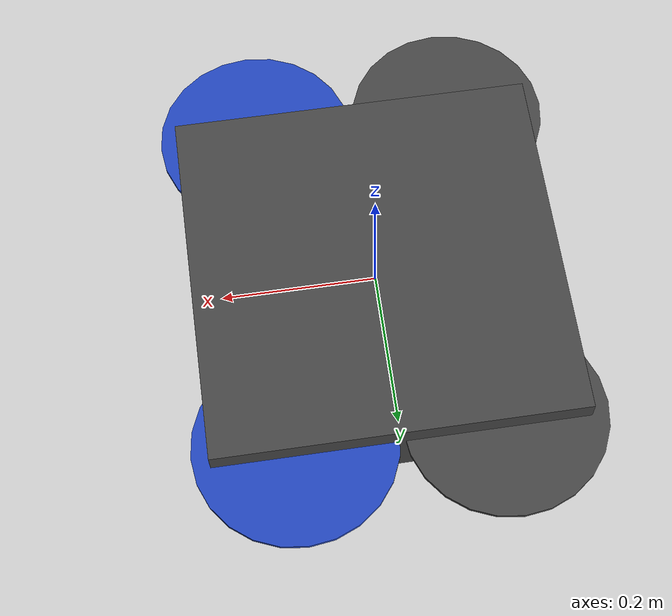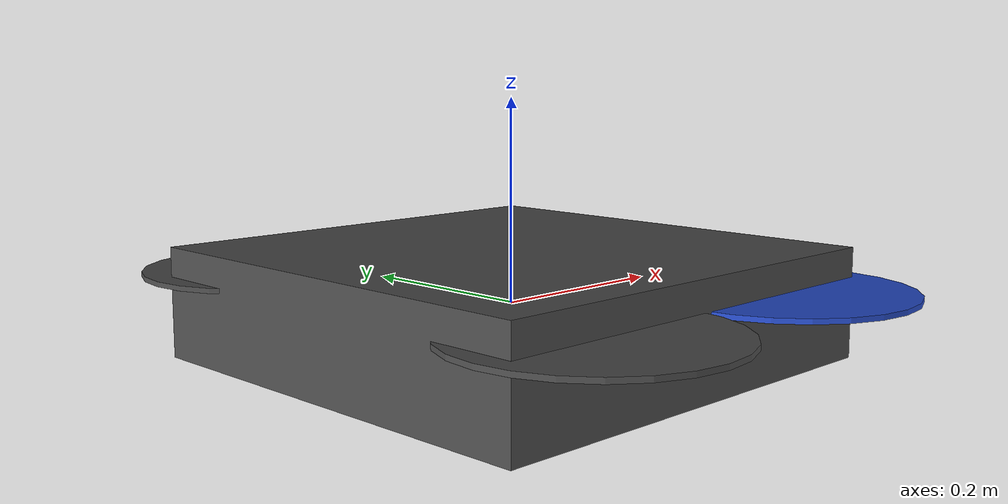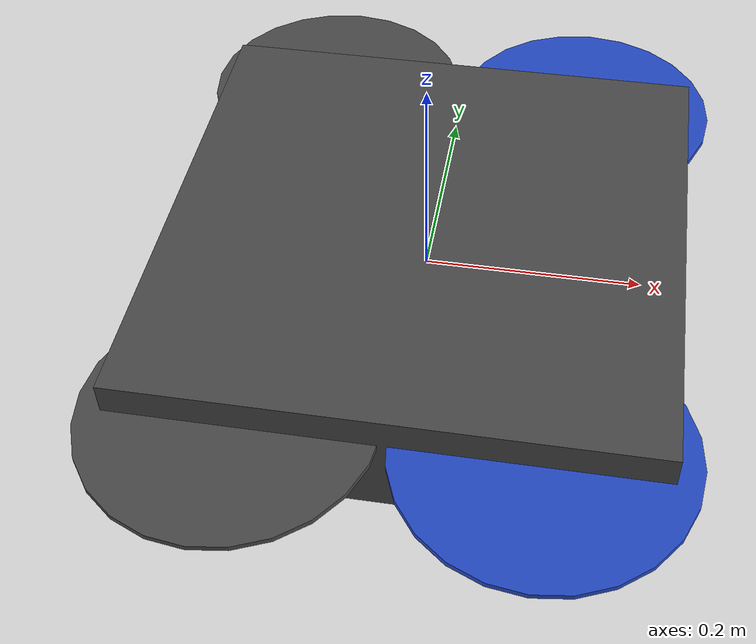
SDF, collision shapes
<?xml version='1.0'?>
<sdf version='1.6'>
  <model name='iris'>
    <link name='base_link'>
      <pose>0 0 0 0 -0 0</pose>
      <inertial>
        <pose>0 0 0 0 -0 0</pose>
        <mass>1.5</mass>
        <inertia>
          <ixx>0.0347563</ixx>
          <ixy>0</ixy>
          <ixz>0</ixz>
          <iyy>0.0458929</iyy>
          <iyz>0</iyz>
          <izz>0.0977</izz>
        </inertia>
      </inertial>
      <collision name='base_link_inertia_collision'>
        <pose>0 0 0 0 -0 0</pose>
        <geometry>
          <box>
            <size>0.47 0.47 0.11</size>
          </box>
        </geometry>
        <surface>
          <contact>
            <ode>
              <min_depth>0.001</min_depth>
              <max_vel>0</max_vel>
            </ode>
          </contact>
          <friction>
            <ode/>
          </friction>
        </surface>
      </collision>
      <visual name='base_link_inertia_visual'>
        <pose>0 0 0 0 -0 0</pose>
        <geometry>
          <mesh>
            <scale>1 1 1</scale>
            <uri>model://iris/meshes/iris.stl</uri>
          </mesh>
        </geometry>
        <material>
          <script>
            <name>Gazebo/DarkGrey</name>
            <uri>file://media/materials/scripts/gazebo.material</uri>
          </script>
        </material>
      </visual>

      <sensor name='gps' type='gps'>
        <pose>0 0 0 0 -0 0</pose>
        <update_rate>10</update_rate>
        <plugin name='gps_plugin' filename='libgazebo_gps_plugin.so'>
          <robotNamespace/>
        </plugin>
      </sensor>

      <sensor name='imu_sensor' type='imu'>
        <pose>0 0 0 3.141593 0 0</pose>
        <always_on>1</always_on>
        <update_rate>100</update_rate>
        <visualize>0</visualize>
        <plugin name='imu_plugin' filename='libgazebo_imu_plugin.so'>
          <robotNamespace/>
          <bodyName>base_link</bodyName>
          <topicName>imu</topicName>
          <serviceName>imu_service</serviceName>
          <gaussianNoise>0.0</gaussianNoise>
          <updateRateHZ>100.0</updateRateHZ>
        </plugin>
      </sensor>

      <sensor name='fpv_camera' type='camera'>
        <pose>0.1 0 0.05 0 0 0</pose> <camera name='head'>
          <horizontal_fov>1.39626</horizontal_fov> <image>
            <width>640</width>
            <height>480</height>
            <format>R8G8B8</format>
          </image>
          <clip>
            <near>0.02</near>
            <far>300</far>
          </clip>
          <noise>
            <type>gaussian</type>
            <mean>0.0</mean>
            <stddev>0.007</stddev>
          </noise>
        </camera>
        <always_on>1</always_on>
        <update_rate>30</update_rate> <visualize>true</visualize> <plugin name='camera_controller' filename='libgazebo_ros_camera.so'>
          <ros>
            <namespace>/fpv_camera</namespace> </ros>
          <camera_name>iris_fpv</camera_name>
          <frame_name>fpv_camera_link_optical</frame_name> </plugin>
      </sensor>
      </link> <link name='/rotor_0'>
      <pose>0.13 -0.22 0.023 0 -0 0</pose>
      <inertial>
        <pose>0 0 0 0 -0 0</pose>
        <mass>0.005</mass>
        <inertia>
          <ixx>9.75e-07</ixx> <ixy>0</ixy> <ixz>0</ixz>
          <iyy>0.000273104</iyy> <iyz>0</iyz>
          <izz>0.000274004</izz>
        </inertia>
      </inertial>
      <collision name='/rotor_0_collision'>
        <pose>0 0 0 0 -0 0</pose>
        <geometry>
          <cylinder>
            <length>0.005</length>
            <radius>0.128</radius>
          </cylinder>
        </geometry>
        <surface>
          <contact> <ode/> </contact>
          <friction> <ode/> </friction>
        </surface>
      </collision>
      <visual name='/rotor_0_visual'>
        <pose>0 0 0 0 -0 0</pose>
        <geometry>
          <mesh>
            <scale>1 1 1</scale>
            <uri>model://iris/meshes/iris_prop_ccw.stl</uri>
          </mesh>
        </geometry>
        <material>
          <script>
            <name>Gazebo/Blue</name>
            <uri>file://media/materials/scripts/gazebo.material</uri>
          </script>
        </material>
      </visual>
    </link>
    <joint name='/rotor_0_joint' type='revolute'>
      <pose>0 0 0 0 -0 0</pose>
      <parent>base_link</parent>
      <child>/rotor_0</child>
      <axis>
        <xyz>0 0 1</xyz> <limit>
          <lower>-1e+16</lower> <upper>1e+16</upper>
        </limit>
        <dynamics>
          <damping>0.005</damping>
        </dynamics>
        <use_parent_model_frame>1</use_parent_model_frame>
      </axis>
      <physics> <ode> <implicit_spring_damper>1</implicit_spring_damper> </ode> </physics>
    </joint>

    <link name='/rotor_1'>
      <pose>-0.13 0.22 0.023 0 -0 0</pose>
       <inertial> <mass>0.005</mass> <inertia> <ixx>9.75e-07</ixx> <iyy>0.000273104</iyy> <izz>0.000274004</izz> </inertia> </inertial>
       <collision name='/rotor_1_collision'> <geometry> <cylinder> <length>0.005</length> <radius>0.128</radius> </cylinder> </geometry> <surface> <contact><ode/></contact> <friction><ode/></friction> </surface> </collision>
       <visual name='/rotor_1_visual'> <geometry> <mesh> <scale>1 1 1</scale> <uri>model://iris/meshes/iris_prop_ccw.stl</uri> </mesh> </geometry> <material> <script> <name>Gazebo/DarkGrey</name> <uri>file://media/materials/scripts/gazebo.material</uri> </script> </material> </visual>
    </link>
    <joint name='/rotor_1_joint' type='revolute'> <parent>base_link</parent> <child>/rotor_1</child> <axis> <xyz>0 0 1</xyz> <limit> <lower>-1e+16</lower> <upper>1e+16</upper> </limit> <dynamics> <damping>0.005</damping> </dynamics> <use_parent_model_frame>1</use_parent_model_frame> </axis> <physics> <ode> <implicit_spring_damper>1</implicit_spring_damper> </ode> </physics> </joint>

    <link name='/rotor_2'>
      <pose>0.13 0.22 0.023 0 -0 0</pose>
      <inertial> <mass>0.005</mass> <inertia> <ixx>9.75e-07</ixx> <iyy>0.000273104</iyy> <izz>0.000274004</izz> </inertia> </inertial>
      <collision name='/rotor_2_collision'> <geometry> <cylinder> <length>0.005</length> <radius>0.128</radius> </cylinder> </geometry> <surface> <contact><ode/></contact> <friction><ode/></friction> </surface> </collision>
      <visual name='/rotor_2_visual'> <geometry> <mesh> <scale>1 1 1</scale> <uri>model://iris/meshes/iris_prop_cw.stl</uri> </mesh> </geometry> <material> <script> <name>Gazebo/Blue</name> <uri>file://media/materials/scripts/gazebo.material</uri> </script> </material> </visual>
    </link>
    <joint name='/rotor_2_joint' type='revolute'> <parent>base_link</parent> <child>/rotor_2</child> <axis> <xyz>0 0 1</xyz> <limit> <lower>-1e+16</lower> <upper>1e+16</upper> </limit> <dynamics> <damping>0.005</damping> </dynamics> <use_parent_model_frame>1</use_parent_model_frame> </axis> <physics> <ode> <implicit_spring_damper>1</implicit_spring_damper> </ode> </physics> </joint>

    <link name='/rotor_3'>
      <pose>-0.13 -0.22 0.023 0 -0 0</pose>
      <inertial> <mass>0.005</mass> <inertia> <ixx>9.75e-07</ixx> <iyy>0.000273104</iyy> <izz>0.000274004</izz> </inertia> </inertial>
      <collision name='/rotor_3_collision'> <geometry> <cylinder> <length>0.005</length> <radius>0.128</radius> </cylinder> </geometry> <surface> <contact><ode/></contact> <friction><ode/></friction> </surface> </collision>
      <visual name='/rotor_3_visual'> <geometry> <mesh> <scale>1 1 1</scale> <uri>model://iris/meshes/iris_prop_cw.stl</uri> </mesh> </geometry> <material> <script> <name>Gazebo/DarkGrey</name> <uri>file://media/materials/scripts/gazebo.material</uri> </script> </material> </visual>
    </link>
    <joint name='/rotor_3_joint' type='revolute'> <parent>base_link</parent> <child>/rotor_3</child> <axis> <xyz>0 0 1</xyz> <limit> <lower>-1e+16</lower> <upper>1e+16</upper> </limit> <dynamics> <damping>0.005</damping> </dynamics> <use_parent_model_frame>1</use_parent_model_frame> </axis> <physics> <ode> <implicit_spring_damper>1</implicit_spring_damper> </ode> </physics> </joint>

    <plugin name='rotor_driver_0' filename='libgazebo_motor_model.so'>
      <robotNamespace/> <jointName>/rotor_0_joint</jointName> <linkName>/rotor_0</linkName> <turningDirection>ccw</turningDirection> <timeConstant>0.0125</timeConstant> <maxRotVelocity>838</maxRotVelocity> <motorConstant>8.54858e-06</motorConstant> <momentConstant>0.016</momentConstant> <commandSubTopic>/gazebo/command/motor_speed</commandSubTopic> <motorNumber>0</motorNumber> <rotorDragCoefficient>0.000106428</rotorDragCoefficient> <rollingMomentCoefficient>1e-06</rollingMomentCoefficient> <motorSpeedPubTopic>/motor_speed/0</motorSpeedPubTopic> <rotorVelocitySlowdownSim>10</rotorVelocitySlowdownSim>
    </plugin>
    <plugin name='rotor_driver_1' filename='libgazebo_motor_model.so'>
      <robotNamespace/> <jointName>/rotor_1_joint</jointName> <linkName>/rotor_1</linkName> <turningDirection>ccw</turningDirection> <timeConstant>0.0125</timeConstant> <maxRotVelocity>838</maxRotVelocity> <motorConstant>8.54858e-06</motorConstant> <momentConstant>0.016</momentConstant> <commandSubTopic>/gazebo/command/motor_speed</commandSubTopic> <motorNumber>1</motorNumber> <rotorDragCoefficient>0.000106428</rotorDragCoefficient> <rollingMomentCoefficient>1e-06</rollingMomentCoefficient> <motorSpeedPubTopic>/motor_speed/1</motorSpeedPubTopic> <rotorVelocitySlowdownSim>10</rotorVelocitySlowdownSim>
    </plugin>
    <plugin name='rotor_driver_2' filename='libgazebo_motor_model.so'>
      <robotNamespace/> <jointName>/rotor_2_joint</jointName> <linkName>/rotor_2</linkName> <turningDirection>cw</turningDirection> <timeConstant>0.0125</timeConstant> <maxRotVelocity>838</maxRotVelocity> <motorConstant>8.54858e-06</motorConstant> <momentConstant>0.016</momentConstant> <commandSubTopic>/gazebo/command/motor_speed</commandSubTopic> <motorNumber>2</motorNumber> <rotorDragCoefficient>0.000106428</rotorDragCoefficient> <rollingMomentCoefficient>1e-06</rollingMomentCoefficient> <motorSpeedPubTopic>/motor_speed/2</motorSpeedPubTopic> <rotorVelocitySlowdownSim>10</rotorVelocitySlowdownSim>
    </plugin>
    <plugin name='rotor_driver_3' filename='libgazebo_motor_model.so'>
      <robotNamespace/> <jointName>/rotor_3_joint</jointName> <linkName>/rotor_3</linkName> <turningDirection>cw</turningDirection> <timeConstant>0.0125</timeConstant> <maxRotVelocity>838</maxRotVelocity> <motorConstant>8.54858e-06</motorConstant> <momentConstant>0.016</momentConstant> <commandSubTopic>/gazebo/command/motor_speed</commandSubTopic> <motorNumber>3</motorNumber> <rotorDragCoefficient>0.000106428</rotorDragCoefficient> <rollingMomentCoefficient>1e-06</rollingMomentCoefficient> <motorSpeedPubTopic>/motor_speed/3</motorSpeedPubTopic> <rotorVelocitySlowdownSim>10</rotorVelocitySlowdownSim>
    </plugin>

    <plugin name='simple_controller' filename='libgazebo_simple_controller.so'>
        <robotNamespace/>
    </plugin>

  </model>
</sdf>
